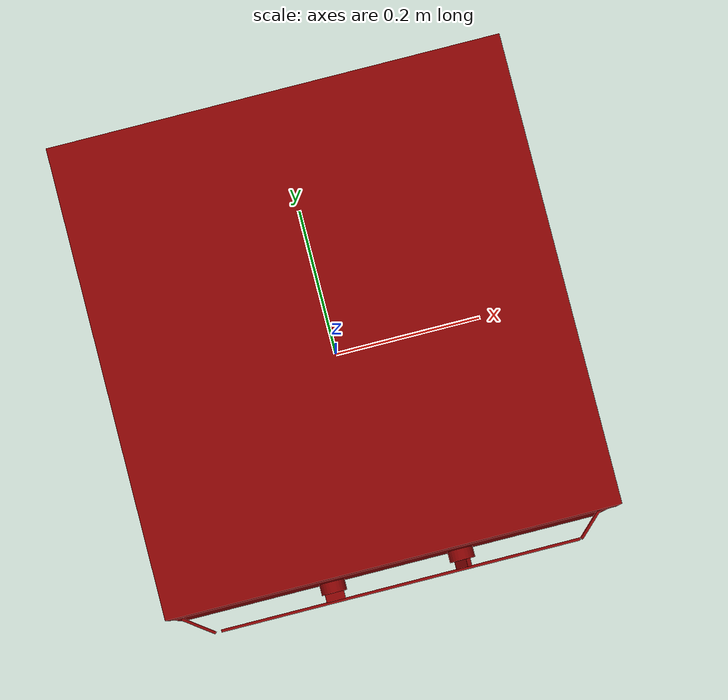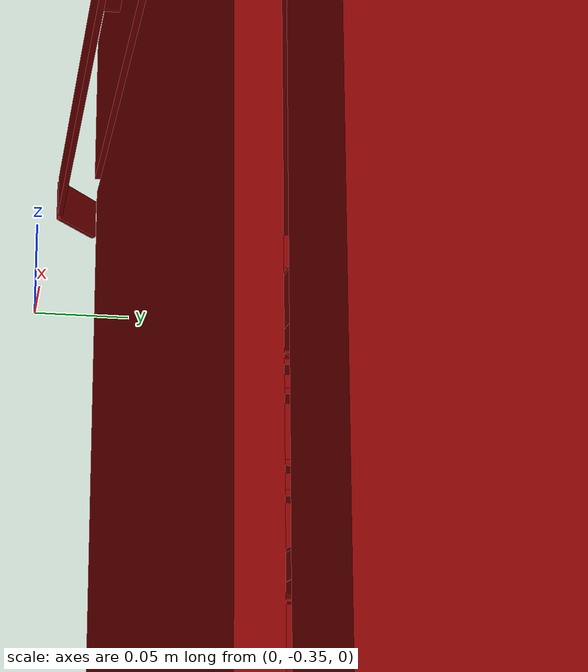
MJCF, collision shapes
<?xml version='1.0' encoding='UTF-8'?>
<mujoco model="model">
  <option timestep="0.002" gravity="0.0 0.0 -9.81"/>
  <compiler angle="radian"/>
  <asset>
    <mesh file="visuals/door.obj" name="door_vis"/>
    <mesh file="visuals/door_Clear.obj" name="door_Clear_vis"/>
    <mesh file="visuals/knob_temp.obj" name="knob_temp_vis"/>
    <mesh file="visuals/knob_time.obj" name="knob_time_vis"/>
    <mesh file="visuals/Body001.obj" name="Body001_vis"/>
    <mesh file="visuals/rack0.obj" name="rack0_vis"/>
    <mesh file="visuals/rack1.obj" name="rack1_vis"/>
    <texture file="visuals/T_BC001.png" name="Body001_material" type="2d"/>
    <material name="Body001_material" rgba="1 1 1 1.0" texture="Body001_material" shininess="0.141421377658844" specular="2"/>
    <texture file="visuals/T_BC001.png" name="door_material" type="2d"/>
    <material name="door_material" rgba="1 1 1 1.0" texture="door_material" shininess="0.141421377658844" specular="2"/>
    <texture file="visuals/T_BC001.png" name="door_Clear_material" type="2d"/>
    <material name="door_Clear_material" rgba="1 1 1 0.800000011920929" texture="door_Clear_material" shininess="0.141421377658844" specular="2"/>
    <texture file="visuals/T_BC001.png" name="knob_temp_material" type="2d"/>
    <material name="knob_temp_material" rgba="1 1 1 1.0" texture="knob_temp_material" shininess="0.141421377658844" specular="2"/>
    <texture file="visuals/T_BC001.png" name="knob_time_material" type="2d"/>
    <material name="knob_time_material" rgba="1 1 1 1.0" texture="knob_time_material" shininess="0.141421377658844" specular="2"/>
    <texture file="visuals/T_BC001.png" name="rack0_material" type="2d"/>
    <material name="rack0_material" rgba="1 1 1 1.0" texture="rack0_material" shininess="0.141421377658844" specular="3"/>
    <texture file="visuals/T_BC001.png" name="rack1_material" type="2d"/>
    <material name="rack1_material" rgba="1 1 1 1.0" texture="rack1_material" shininess="0.141421377658844" specular="3"/>
  </asset>
  <default>
    <default class="visual">
      <geom conaffinity="0" contype="0" group="1" type="mesh"/>
    </default>
    <default class="collision">
      <geom group="0" rgba="0.5 0 0 0.5"/>
    </default>
    <default class="spawn">
      <geom group="0" rgba="1 1 1 0.5" contype="0" conaffinity="0"/>
      <site group="0" rgba="1 1 1 0.5"/>
    </default>
    <default class="region">
      <geom group="1" conaffinity="0" contype="0" rgba="0 1 0 0"/>
    </default>
  </default>
  <worldbody>
    <body>
      <body name="object">
        <geom mesh="Body001_vis" type="mesh" solimp="0.998 0.998 0.001" solref="0.001 1" friction="0.95 0.3 0.1" class="visual" material="Body001_material"/>
        <geom class="collision" type="box" pos="-0.00047582 0.01547347 0.24921180" size="0.29999977350234985 0.3114400804042816 0.05601862445473671" quat="1.0 0.0 0.0 0.0"/>
        <geom class="collision" type="box" pos="-0.18605082 -0.06989067 0.08641645" size="0.015698472037911415 0.17097720503807068 0.00200273678638041" quat="1.0 0.0 0.0 0.0"/>
        <geom class="collision" type="box" pos="0.25076899 0.03669385 -0.05494378" size="0.04875561594963074 0.29021966457366943 0.25029295682907104" quat="1.0 0.0 0.0 0.0"/>
        <geom class="collision" type="box" pos="-0.00397494 0.03667838 0.15847304" size="0.2664572596549988 0.29023516178131104 0.03686726465821266" quat="1.0 0.0 0.0 0.0"/>
        <geom class="collision" type="box" pos="-0.00397494 0.03670439 -0.26598755" size="0.26645660400390625 0.2902091145515442 0.03924315795302391" quat="1.0 0.0 0.0 0.0"/>
        <geom class="collision" type="box" pos="-0.00397494 0.23109714 -0.01961638" size="0.26645591855049133 0.09581636637449265 0.20817933976650238" quat="1.0 0.0 0.0 0.0"/>
        <geom class="collision" type="box" pos="-0.18605082 -0.06989067 0.06537466" size="0.01569836027920246 0.17097540199756622 0.002002722816541791" quat="1.0 0.0 0.0 0.0"/>
        <geom class="collision" type="box" pos="-0.18605082 -0.06989067 0.02280739" size="0.015698347240686417 0.1709752082824707 0.0020027211867272854" quat="1.0 0.0 0.0 0.0"/>
        <geom class="collision" type="box" pos="-0.18605082 -0.06989067 0.00273303" size="0.015698334202170372 0.170974999666214 0.00200271955691278" quat="1.0 0.0 0.0 0.0"/>
        <geom class="collision" type="box" pos="-0.18605082 -0.06989067 -0.19619647" size="0.015698321163654327 0.17097480595111847 0.0020027179270982742" quat="1.0 0.0 0.0 0.0"/>
        <geom class="collision" type="box" pos="-0.18605082 -0.06989067 -0.17600119" size="0.015698308125138283 0.17097459733486176 0.0020027162972837687" quat="1.0 0.0 0.0 0.0"/>
        <geom class="collision" type="box" pos="-0.18605082 -0.06989067 -0.13355485" size="0.015698296949267387 0.17097438871860504 0.0020027149002999067" quat="1.0 0.0 0.0 0.0"/>
        <geom class="collision" type="box" pos="-0.18605082 -0.06989067 -0.11323864" size="0.015698283910751343 0.17097419500350952 0.002002713270485401" quat="1.0 0.0 0.0 0.0"/>
        <geom class="collision" type="box" pos="-0.18605082 -0.06989067 -0.06583417" size="0.015698270872235298 0.1709739863872528 0.0020027116406708956" quat="1.0 0.0 0.0 0.0"/>
        <geom class="collision" type="box" pos="-0.18605082 -0.06989067 -0.04563888" size="0.015698257833719254 0.1709737926721573 0.00200271001085639" quat="1.0 0.0 0.0 0.0"/>
        <geom class="collision" type="box" pos="-0.24959792 0.03668132 -0.05494360" size="0.0508805476129055 0.29023221135139465 0.25028979778289795" quat="1.0 0.0 0.0 0.0"/>
        <geom class="collision" type="box" pos="0.19205275 -0.06989067 0.06537466" size="0.015698233619332314 0.17097339034080505 0.0020027069840580225" quat="1.0 0.0 0.0 0.0"/>
        <geom class="collision" type="box" pos="0.19205275 -0.06989067 -0.04563888" size="0.01569822058081627 0.17097318172454834 0.002002705354243517" quat="1.0 0.0 0.0 0.0"/>
        <geom class="collision" type="box" pos="0.19205275 -0.06989067 -0.06583417" size="0.015698207542300224 0.17097297310829163 0.0020027037244290113" quat="1.0 0.0 0.0 0.0"/>
        <geom class="collision" type="box" pos="0.19205275 -0.06989067 -0.11323864" size="0.01569819450378418 0.1709727793931961 0.0020027020946145058" quat="1.0 0.0 0.0 0.0"/>
        <geom class="collision" type="box" pos="0.19205275 -0.06989067 -0.13355485" size="0.015698181465268135 0.1709725707769394 0.0020027004648" quat="1.0 0.0 0.0 0.0"/>
        <geom class="collision" type="box" pos="0.19205275 -0.06989067 -0.17600119" size="0.01569817028939724 0.17097237706184387 0.0020026990678161383" quat="1.0 0.0 0.0 0.0"/>
        <geom class="collision" type="box" pos="0.19205275 -0.06989067 -0.19619647" size="0.015698157250881195 0.17097216844558716 0.0020026974380016327" quat="1.0 0.0 0.0 0.0"/>
        <geom class="collision" type="box" pos="0.19205275 -0.06989067 0.00273303" size="0.01569814421236515 0.17097195982933044 0.002002695808187127" quat="1.0 0.0 0.0 0.0"/>
        <geom class="collision" type="box" pos="0.19205275 -0.06989067 0.02280739" size="0.015698131173849106 0.17097176611423492 0.0020026941783726215" quat="1.0 0.0 0.0 0.0"/>
        <geom class="collision" type="box" pos="0.19205275 -0.06989067 0.08641645" size="0.01569811813533306 0.1709715574979782 0.002002692548558116" quat="1.0 0.0 0.0 0.0"/>
        <body name="door">
          <joint axis="1.0 0.0 0.0" pos="0.00053838 -0.2942112518474078 -0.28376135134246827" limited="true" name="door_joint" range="0.0 1.15" type="hinge" damping="1" frictionloss="1" armature="1" stiffness="2"/>
          <geom mesh="door_vis" type="mesh" solimp="0.998 0.998 0.001" solref="0.001 1" friction="0.95 0.3 0.1" class="visual" material="door_material"/>
          <geom class="collision" type="box" pos="0.00049540 -0.28864980 -0.03111723" size="0.20893527567386627 0.002611293224617839 0.14597749710083008" quat="1.0 0.0 0.0 0.0"/>
          <geom class="collision" type="box" pos="0.00053838 -0.28540546 -0.05106303" size="0.2999388873577118 0.008805791847407818 0.23269832134246826" quat="1.0 0.0 0.0 0.0" name="door_main"/>
          <geom class="collision" type="box" pos="0.00366788 -0.32491154 0.15417056" size="0.24166740477085114 0.0017287449445575476 0.014042295515537262" quat="1.0 0.0 0.0 0.0" name="door_handle_main"/>
          <geom class="collision" type="box" pos="0.26533154 -0.30849112 0.15417056" size="0.02361122891306877 0.0017287449445575476 0.014042295515537262" quat="0.9275559186935425 0.0 0.0 0.3736843764781952"/>
          <geom class="collision" type="box" pos="-0.26504850 -0.31144155 0.15417056" size="0.02361122891306877 0.0017287449445575476 0.014042295515537262" quat="0.9500517845153809 0.0 0.0 -0.31209230422973633"/>
          <body name="door_Clear">
            <geom mesh="door_Clear_vis" type="mesh" solimp="0.998 0.998 0.001" solref="0.001 1" friction="0.95 0.3 0.1" class="visual" material="door_Clear_material"/>
            <geom class="collision" type="box" pos="0.00049540 -0.28864980 -0.03111723" size="0.20893527567386627 0.002611293224617839 0.14597749710083008" quat="1.0 0.0 0.0 0.0"/>
          </body>
        </body>
        <body name="knob_temp">
          <joint axis="0.0 1.0 0.0" pos="0.08715952 -0.30984083 0.24109202" limited="true" name="knob_temp_joint" range="0.0 5.061454830783556" type="hinge" damping="0.05" frictionloss="0.75" armature="1"/>
          <geom mesh="knob_temp_vis" type="mesh" solimp="0.998 0.998 0.001" solref="0.001 1" friction="0.95 0.3 0.1" class="visual" material="knob_temp_material"/>
          <geom class="collision" type="cylinder" pos="0.08723245 -0.30679027 0.24088056" size="0.0165864247828722 0.007309887558221817" quat="0.7071067094802856 0.70710688829422 0.0 0.0" name="knob_temp_main" friction="100 0.5 0.01"/>
          <geom class="collision" type="box" pos="0.08678289 -0.31891713 0.24130331" size="0.012560190632939339 0.005499999970197678 0.003529045730829239" quat="0.8870107531547546 0.0 -0.46174874901771545 0.0" friction="100 0.5 0.01"/>
        </body>
        <body name="knob_time">
          <joint axis="0.0 1.0 0.0" pos="-0.08307489 -0.30984086 0.24109202" limited="true" name="knob_time_joint" range="0.0 5.235987755982989" type="hinge" damping="0.05" frictionloss="0.75" armature="1"/>
          <geom mesh="knob_time_vis" type="mesh" solimp="0.998 0.998 0.001" solref="0.001 1" friction="0.95 0.3 0.1" class="visual" material="knob_time_material"/>
          <geom class="collision" type="cylinder" pos="-0.08295388 -0.30679027 0.24088056" size="0.0165864247828722 0.007309887558221817" quat="0.7071067094802856 0.70710688829422 0.0 0.0" name="knob_time_main" friction="100 0.5 0.01"/>
          <geom class="collision" type="box" pos="-0.08322001 -0.31891713 0.24121739" size="0.012560189701616764 0.005499999970197678 0.0035290452651679516" quat="1.0 0.0 0.0 0.0" friction="100 0.5 0.01"/>
        </body>
        <body name="rack0">
          <geom class="region" name="reg_rack0" type="box" pos="0.0006792350000000003 -0.06574801499999999 -0.060140994999999996" size="0.130849315 0.097492195 0.073079825"/>
          <joint axis="0.0 -1.0 0.0" pos="0.00217903 -0.07038424 -0.13426894" limited="true" name="rack0_joint" range="0.0 0.25" type="slide" damping="1" frictionloss="1" armature=".01" stiffness="0.05"/>
          <geom mesh="rack0_vis" type="mesh" solimp="0.998 0.998 0.001" solref="0.001 1" friction="0.95 0.3 0.1" class="visual" material="rack0_material"/>
          <geom class="collision" type="box" pos="-0.14430296 -0.06485561 -0.13411960" size="0.01317896880209446 0.12244553118944168 0.0009000163408927619" quat="1.9170731491158222e-07 0.984592854976654 3.404695902986532e-08 -0.17486241459846497"/>
          <geom class="collision" type="box" pos="0.00022910 -0.06692999 -0.13931379" size="0.13350552320480347 0.09684485197067261 0.0009000062709674239" quat="1.0 0.0 0.0 0.0"/>
          <geom class="collision" type="box" pos="0.14565092 -0.07039950 -0.13411960" size="0.013178970664739609 0.12170890718698502 0.0009000062709674239" quat="0.984592854976654 0.0 -0.17486241459846497 0.0"/>
          <geom class="collision" type="box" pos="-0.00175937 0.04359602 -0.13458392" size="0.1570330709218979 0.0138907665386796 0.0009000163991004229" quat="1.9181437949100655e-07 -3.3438528390661304e-08 -0.9851427674293518 -0.1717374622821808"/>
          <geom class="collision" type="box" pos="-0.00068290 -0.17654403 -0.13458392" size="0.15964028239250183 0.013890762813389301 0.0009000063291750848" quat="0.9851427674293518 -0.17173747718334198 4.004928938934717e-17 3.513386062309395e-19"/>
          <geom class="collision" type="box" pos="0.00240384 -0.20459059 -0.12950102" size="0.1902724802494049 0.01543697714805603 0.0009000062709674239" quat="1.0 0.0 0.0 0.0"/>
          <geom class="collision" type="box" pos="0.00933906 0.06732207 -0.12950102" size="0.16697102785110474 0.012057873420417309 0.0009000062709674239" quat="1.0 0.0 0.0 0.0"/>
          <geom class="collision" type="box" pos="-0.17187463 -0.06693002 -0.12950102" size="0.01585138961672783 0.14553751051425934 0.0009000062709674239" quat="1.0 0.0 0.0 0.0"/>
          <geom class="collision" type="box" pos="0.17512225 -0.06693002 -0.12950102" size="0.017793916165828705 0.14553751051425934 0.0009000062709674239" quat="1.0 0.0 0.0 0.0"/>
        </body>
        <body name="rack1">
          <geom class="region" name="reg_rack1" type="box" pos="0.0008475699999999919 -0.06574801499999999 0.070590315" size="0.13135578 0.097492195 0.045594104999999996"/>
          <joint axis="0.0 -1.0 0.0" pos="0.00065258 -0.06692997 0.02394975" limited="true" name="rack1_joint" range="0.0 0.24" type="slide" damping="1" frictionloss="1" armature=".01" stiffness="0.05"/>
          <geom mesh="rack1_vis" type="mesh" solimp="0.998 0.998 0.001" solref="0.001 1" friction="0.95 0.3 0.1" class="visual" material="rack1_material"/>
          <geom class="collision" type="box" pos="0.16898766 -0.06693002 0.02876252" size="0.011659335345029831 0.14553751051425934 0.0009000062709674239" quat="1.0 0.0 0.0 0.0"/>
          <geom class="collision" type="box" pos="-0.16768257 -0.06693002 0.02876252" size="0.011659335345029831 0.14553751051425934 0.0009000062709674239" quat="1.0 0.0 0.0 0.0"/>
          <geom class="collision" type="box" pos="0.00933906 0.06732207 0.02876252" size="0.16697102785110474 0.012057873420417309 0.0009000062709674239" quat="1.0 0.0 0.0 0.0"/>
          <geom class="collision" type="box" pos="0.00933906 -0.20121149 0.02876252" size="0.16697102785110474 0.012057873420417309 0.0009000062709674239" quat="1.0 0.0 0.0 0.0"/>
          <geom class="collision" type="box" pos="0.00061791 -0.17654403 0.02367961" size="0.15524958074092865 0.013890762813389301 0.0009000063291750848" quat="0.9851427674293518 -0.17173747718334198 4.004928938934717e-17 3.513386062309395e-19"/>
          <geom class="collision" type="box" pos="0.00347189 0.04359602 0.02367961" size="0.1517409235239029 0.013890765607357025 0.0009000144200399518" quat="1.9181437949100655e-07 -3.3438528390661304e-08 -0.9851427674293518 -0.1717374622821808"/>
          <geom class="collision" type="box" pos="0.14565092 -0.06683607 0.02414393" size="0.013178970664739609 0.12294706702232361 0.0009000062709674239" quat="0.984592854976654 0.0 -0.17486241459846497 0.0"/>
          <geom class="collision" type="box" pos="-0.00022906 -0.06692999 0.01894973" size="0.1339636743068695 0.09684485197067261 0.0009000062709674239" quat="1.0 0.0 0.0 0.0"/>
          <geom class="collision" type="box" pos="-0.14430296 -0.06885401 0.02414393" size="0.01317896880209446 0.11964777857065201 0.0009000152931548655" quat="1.9170731491158222e-07 0.984592854976654 3.404695902986532e-08 -0.17486241459846497"/>
        </body>
        <geom class="region" name="reg_int" type="box" pos="0.0021674200000000032 -0.05550947999999999 -0.05354214000000001" size="0.19047655 0.16746207 0.16337462"/>
        <geom class="region" name="reg_main" type="box" pos="0.0 0.015479500000000007 0.0004669999999999952" size="0.30147733 0.31243403000000003 0.30669601"/>
      </body>
    </body>
  </worldbody>
  <actuator>
    <motor name="door_joint_actuator" joint="door_joint" gear="50"/>
    <motor name="knob_temp_joint_actuator" joint="knob_temp_joint" gear="10"/>
    <motor name="knob_time_joint_actuator" joint="knob_time_joint" gear="10"/>
    <motor name="rack0_joint_actuator" joint="rack0_joint" gear="50"/>
    <motor name="rack1_joint_actuator" joint="rack1_joint" gear="50"/>
  </actuator>
</mujoco>
